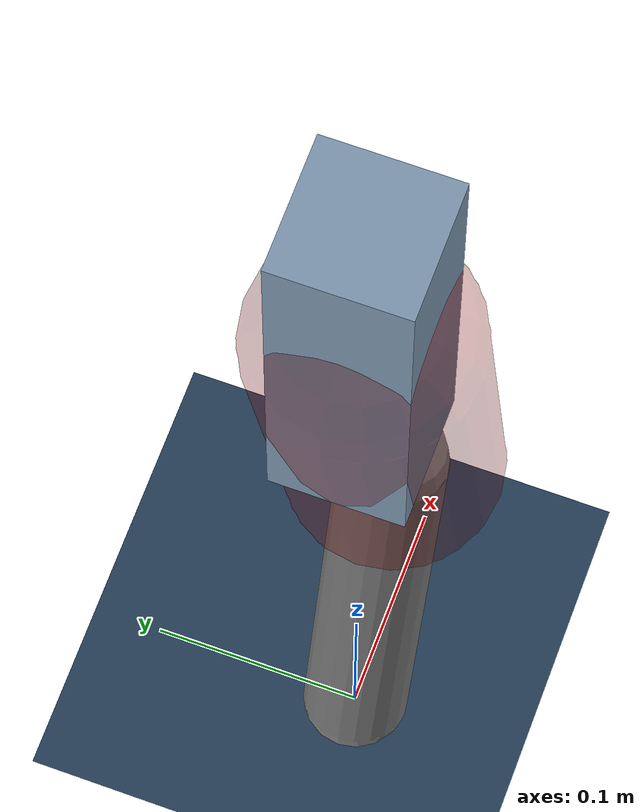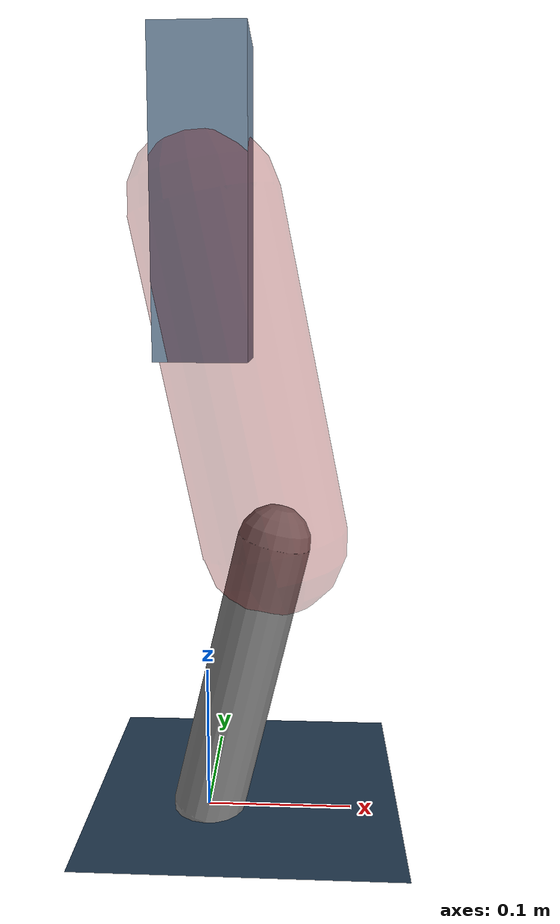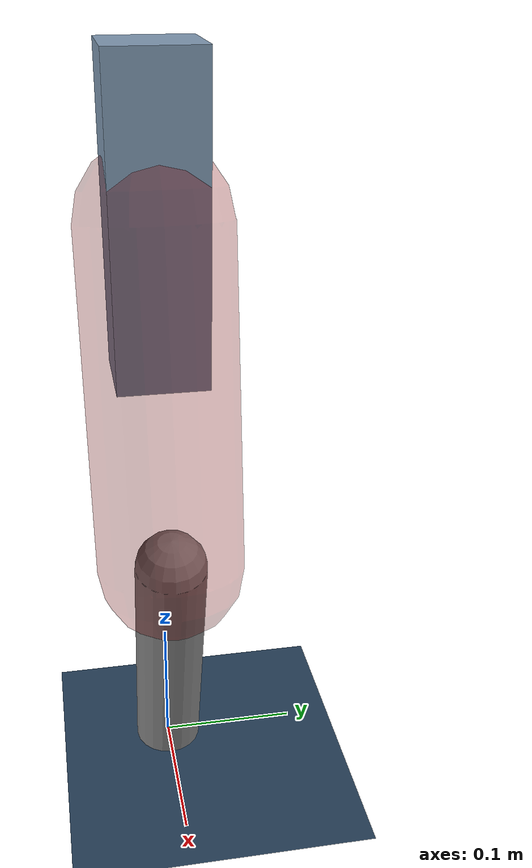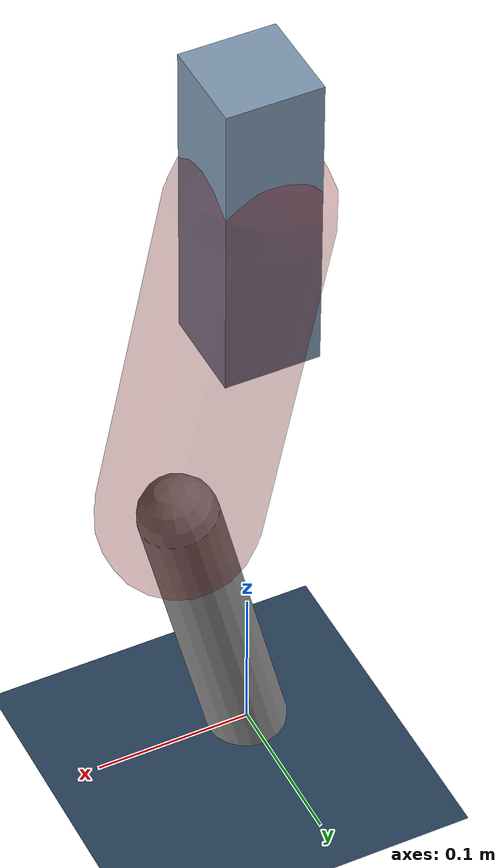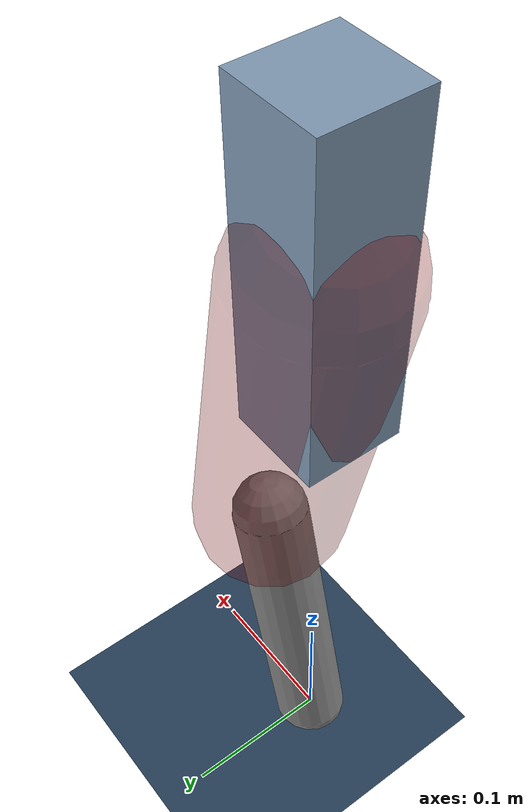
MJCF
<mujoco model="Hopper2D">
	<compiler inertiafromgeom="true" angle="radian" />
	<option timestep="0.001" integrator="implicit" cone="elliptic" solver="Newton" tolerance="1e-10" />

	<default>
		<geom contype="1" conaffinity="1" condim="3" friction="2 0.005 0.0001" solref="0.005 1" />
		<joint limited="true" damping="0.1" />
	</default>

	<asset>
		<texture name="skybox" type="skybox" builtin="gradient" rgb1=".4 .6 .8" rgb2="0 0 0" width="800" height="800" />
		<texture name="grid" type="2d" builtin="checker" rgb1=".1 .2 .3" rgb2=".2 .3 .4" width="300" height="300" mark="edge" markrgb=".2 .3 .4" />
		<material name="ground" texture="grid" texrepeat="1 1" texuniform="true" reflectance="0.1" />
		<material name="leg" rgba="0.5 0.6 0.7 1" />
	</asset>

	<worldbody>

		<geom name="floor" type="plane" size="5 5 0.25" material="ground" />

		<light directional="false" diffuse="0.8 0.8 0.8" specular="0.3 0.3 0.3" pos="0 0 2" dir="0 0 -1" />
		<light mode="targetbodycom" target="base" directional="false" diffuse="0.8 0.8 0.8" specular="0.3 0.3 0.3" pos="0 0 2" dir="0 0 -1" />

		<camera name="fixed" pos="0 -2 1" xyaxes="1 0 0 0 0 1" />
		<camera name="tracking" mode="trackcom" pos="0 -3 1" />

		<body name="root" pos="0 0 0.41485385231829464">
			<joint name="slide_x" type="slide" axis="1 0 0" range="-100 100" />
			<joint name="slide_z" type="slide" axis="0 0 1" range="0 10" />

			<body name="base" pos="0 0 0">
				<geom name="torso" type="box" size="0.03 0.03 0.1" mass="2.8120000000000003" material="leg" />

				<body name="link1" pos="0 0 0" euler="0 1.3671787224609566 0">
					<joint type="hinge" axis="0 -1 0" pos="0 0 0" name="hinge1" limited="true" range="-3.14 3.14" stiffness="0" damping="0.1" />
					<geom name="thigh" type="capsule" fromto="0 0 0 0.22608919246007594 0 0" size="0.05" rgba="0.5 0 0 0.3" mass="0.7951229811501899" />

					<body name="link2" pos="0.22608919246007594 0 0" euler="0 0.4357077916496879 0">
						<joint type="hinge" axis="0 -1 0" pos="0 0 0" name="hinge2" limited="true" range="-3.14 3.14" stiffness="0" damping="0.1" />
						<geom name="shank" type="capsule" fromto="0 0 0 0.1987646598582187 0 0" size="0.025" mass="0.3998881938723968" />

					</body>
				</body>
			</body>
		</body>
	</worldbody>

	<actuator>
		<motor name="torque1" joint="hinge1" ctrlrange="-139.0263525464825 139.0263525464825" ctrllimited="true" gear="1" />
		<motor name="torque2" joint="hinge2" ctrlrange="-53.05748975075926 53.05748975075926" ctrllimited="true" gear="1" />
	</actuator>
</mujoco>
